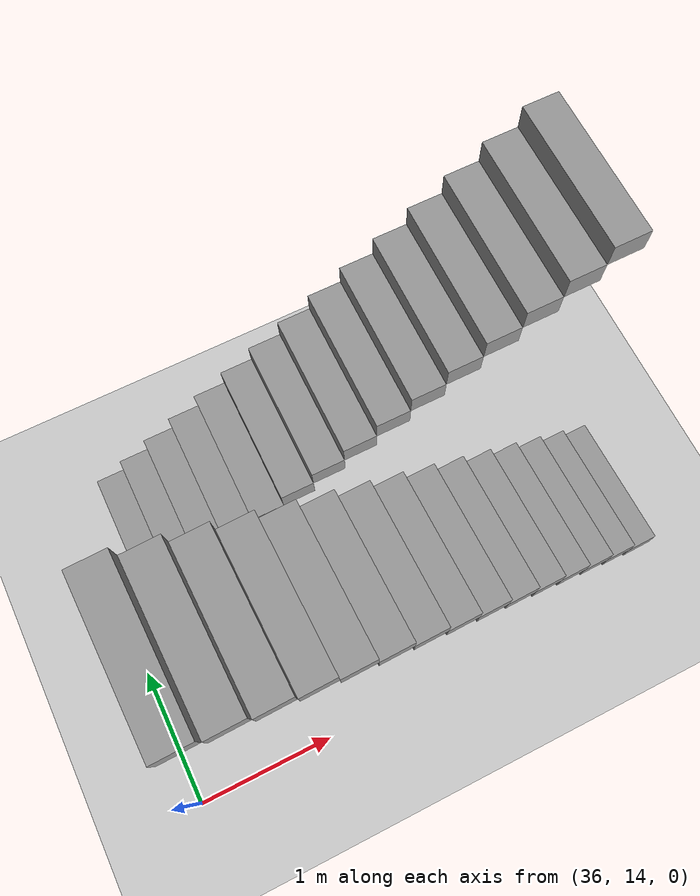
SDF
<sdf version="1.6">
 <world name="default">
  <model name="ground_plane">
   <static>1</static>
   <link name="link">
    <collision name="collision">
     <geometry><plane><normal>0 0 1</normal><size>100 100</size></plane></geometry>
     <surface><friction><ode><mu>100</mu><mu2>50</mu2></ode></friction></surface>
    </collision>
    <visual name="visual">
     <cast_shadows>0</cast_shadows>
     <geometry><plane><normal>0 0 1</normal><size>100 100</size></plane></geometry>
     <material>
      <script><uri>file://media/materials/scripts/gazebo.material</uri><name>Gazebo/Grey</name></script>
     </material>
    </visual>
   </link>
  </model>
  <model name="Staircase_5">
   <link name="Stairs_0">
    <visual name="Stairs_0_Visual_2">
     <pose>-1.16667 -0 0.416667 0 -0 1.5708</pose>
     <geometry><box><size>1 0.233333 0.166667</size></box></geometry>
     <material>
      <script><uri>file://media/materials/scripts/gazebo.material</uri><name>Gazebo/Grey</name></script>
      <ambient>1 1 1 1</ambient>
      <shader type="pixel"/>
     </material>
     <meta><layer>0</layer></meta>
    </visual>
    <visual name="Stairs_0_Visual_3">
     <pose>-0.933333 -0 0.583333 0 -0 1.5708</pose>
     <geometry><box><size>1 0.233333 0.166667</size></box></geometry>
     <material>
      <script><uri>file://media/materials/scripts/gazebo.material</uri><name>Gazebo/Grey</name></script>
      <ambient>1 1 1 1</ambient>
      <shader type="pixel"/>
     </material>
     <meta><layer>0</layer></meta>
    </visual>
    <visual name="Stairs_0_Visual_4">
     <pose>-0.7 0 0.75 0 -0 1.5708</pose>
     <geometry><box><size>1 0.233333 0.166667</size></box></geometry>
     <material>
      <script><uri>file://media/materials/scripts/gazebo.material</uri><name>Gazebo/Grey</name></script>
      <ambient>1 1 1 1</ambient>
      <shader type="pixel"/>
     </material>
     <meta><layer>0</layer></meta>
    </visual>
    <visual name="Stairs_0_Visual_5">
     <pose>-0.466667 0 0.916667 0 -0 1.5708</pose>
     <geometry><box><size>1 0.233333 0.166667</size></box></geometry>
     <material>
      <script><uri>file://media/materials/scripts/gazebo.material</uri><name>Gazebo/Grey</name></script>
      <ambient>1 1 1 1</ambient>
      <shader type="pixel"/>
     </material>
     <meta><layer>0</layer></meta>
    </visual>
    <visual name="Stairs_0_Visual_6">
     <pose>-0.233333 0 1.08333 0 -0 1.5708</pose>
     <geometry><box><size>1 0.233333 0.166667</size></box></geometry>
     <material>
      <script><uri>file://media/materials/scripts/gazebo.material</uri><name>Gazebo/Grey</name></script>
      <ambient>1 1 1 1</ambient>
      <shader type="pixel"/>
     </material>
     <meta><layer>0</layer></meta>
    </visual>
    <visual name="Stairs_0_Visual_7">
     <pose>0 0 1.25 0 -0 1.5708</pose>
     <geometry><box><size>1 0.233333 0.166667</size></box></geometry>
     <material>
      <script><uri>file://media/materials/scripts/gazebo.material</uri><name>Gazebo/Grey</name></script>
      <ambient>1 1 1 1</ambient>
      <shader type="pixel"/>
     </material>
     <meta><layer>0</layer></meta>
    </visual>
    <visual name="Stairs_0_Visual_8">
     <pose>0.233333 0 1.41667 0 -0 1.5708</pose>
     <geometry><box><size>1 0.233333 0.166667</size></box></geometry>
     <material>
      <script><uri>file://media/materials/scripts/gazebo.material</uri><name>Gazebo/Grey</name></script>
      <ambient>1 1 1 1</ambient>
      <shader type="pixel"/>
     </material>
     <meta><layer>0</layer></meta>
    </visual>
    <visual name="Stairs_0_Visual_9">
     <pose>0.466667 0 1.58333 0 -0 1.5708</pose>
     <geometry><box><size>1 0.233333 0.166667</size></box></geometry>
     <material>
      <script><uri>file://media/materials/scripts/gazebo.material</uri><name>Gazebo/Grey</name></script>
      <ambient>1 1 1 1</ambient>
      <shader type="pixel"/>
     </material>
     <meta><layer>0</layer></meta>
    </visual>
    <visual name="Stairs_0_Visual_10">
     <pose>0.7 0 1.75 0 -0 1.5708</pose>
     <geometry><box><size>1 0.233333 0.166667</size></box></geometry>
     <material>
      <script><uri>file://media/materials/scripts/gazebo.material</uri><name>Gazebo/Grey</name></script>
      <ambient>1 1 1 1</ambient>
      <shader type="pixel"/>
     </material>
     <meta><layer>0</layer></meta>
    </visual>
    <visual name="Stairs_0_Visual_11">
     <pose>0.933334 0 1.91667 0 -0 1.5708</pose>
     <geometry><box><size>1 0.233333 0.166667</size></box></geometry>
     <material>
      <script><uri>file://media/materials/scripts/gazebo.material</uri><name>Gazebo/Grey</name></script>
      <ambient>1 1 1 1</ambient>
      <shader type="pixel"/>
     </material>
     <meta><layer>0</layer></meta>
    </visual>
    <visual name="Stairs_0_Visual_12">
     <pose>1.16667 0 2.08333 0 -0 1.5708</pose>
     <geometry><box><size>1 0.233333 0.166667</size></box></geometry>
     <material>
      <script><uri>file://media/materials/scripts/gazebo.material</uri><name>Gazebo/Grey</name></script>
      <ambient>1 1 1 1</ambient>
      <shader type="pixel"/>
     </material>
     <meta><layer>0</layer></meta>
    </visual>
    <visual name="Stairs_0_Visual_13">
     <pose>1.4 0 2.25 0 -0 1.5708</pose>
     <geometry><box><size>1 0.233333 0.166667</size></box></geometry>
     <material>
      <script><uri>file://media/materials/scripts/gazebo.material</uri><name>Gazebo/Grey</name></script>
      <ambient>1 1 1 1</ambient>
      <shader type="pixel"/>
     </material>
     <meta><layer>0</layer></meta>
    </visual>
    <visual name="Stairs_0_Visual_14">
     <pose>1.63333 0 2.41667 0 -0 1.5708</pose>
     <geometry><box><size>1 0.233333 0.166667</size></box></geometry>
     <material>
      <script><uri>file://media/materials/scripts/gazebo.material</uri><name>Gazebo/Grey</name></script>
      <ambient>1 1 1 1</ambient>
      <shader type="pixel"/>
     </material>
     <meta><layer>0</layer></meta>
    </visual>
    <visual name="Stairs_0_Visual_0">
     <pose>-1.63333 -0 0.083333 0 -0 1.5708</pose>
     <geometry><box><size>1 0.233333 0.166667</size></box></geometry>
     <material>
      <script><uri>file://media/materials/scripts/gazebo.material</uri><name>Gazebo/Grey</name></script>
      <ambient>1 1 1 1</ambient>
      <shader type="pixel"/>
     </material>
     <meta><layer>0</layer></meta>
    </visual>
    <visual name="Stairs_0_Visual_1">
     <pose>-1.4 -0 0.25 0 -0 1.5708</pose>
     <geometry><box><size>1 0.233333 0.166667</size></box></geometry>
     <material>
      <script><uri>file://media/materials/scripts/gazebo.material</uri><name>Gazebo/Grey</name></script>
      <ambient>1 1 1 1</ambient>
      <shader type="pixel"/>
     </material>
     <meta><layer>0</layer></meta>
    </visual>
    <collision name="Stairs_0_Collision_0">
     <pose>-1.63333 0 0.083333 0 -0 1.5708</pose>
     <geometry><box><size>1 0.233333 0.166667</size></box></geometry>
     <surface>
      <friction>
       <ode><mu>1</mu><mu2>1</mu2><fdir1>0 0 0</fdir1><slip1>0</slip1><slip2>0</slip2></ode>
       <torsional>
        <coefficient>1</coefficient>
        <patch_radius>0</patch_radius>
        <surface_radius>0</surface_radius>
        <use_patch_radius>1</use_patch_radius>
        <ode><slip>0</slip></ode>
       </torsional>
      </friction>
      <bounce><restitution_coefficient>0</restitution_coefficient><threshold>1e+06</threshold></bounce>
      <contact>
       <collide_without_contact>0</collide_without_contact>
       <collide_without_contact_bitmask>1</collide_without_contact_bitmask>
       <collide_bitmask>1</collide_bitmask>
       <ode>
        <soft_cfm>0</soft_cfm>
        <soft_erp>0.2</soft_erp>
        <kp>1e+13</kp>
        <kd>1</kd>
        <max_vel>0.01</max_vel>
        <min_depth>0</min_depth>
       </ode>
       <bullet>
        <split_impulse>1</split_impulse>
        <split_impulse_penetration_threshold>-0.01</split_impulse_penetration_threshold>
        <soft_cfm>0</soft_cfm>
        <soft_erp>0.2</soft_erp>
        <kp>1e+13</kp>
        <kd>1</kd>
       </bullet>
      </contact>
     </surface>
    </collision>
    <collision name="Stairs_0_Collision_1">
     <pose>-1.4 0 0.25 0 -0 1.5708</pose>
     <geometry><box><size>1 0.233333 0.166667</size></box></geometry>
     <surface>
      <friction>
       <ode><mu>1</mu><mu2>1</mu2><fdir1>0 0 0</fdir1><slip1>0</slip1><slip2>0</slip2></ode>
       <torsional>
        <coefficient>1</coefficient>
        <patch_radius>0</patch_radius>
        <surface_radius>0</surface_radius>
        <use_patch_radius>1</use_patch_radius>
        <ode><slip>0</slip></ode>
       </torsional>
      </friction>
      <bounce><restitution_coefficient>0</restitution_coefficient><threshold>1e+06</threshold></bounce>
      <contact>
       <collide_without_contact>0</collide_without_contact>
       <collide_without_contact_bitmask>1</collide_without_contact_bitmask>
       <collide_bitmask>1</collide_bitmask>
       <ode>
        <soft_cfm>0</soft_cfm>
        <soft_erp>0.2</soft_erp>
        <kp>1e+13</kp>
        <kd>1</kd>
        <max_vel>0.01</max_vel>
        <min_depth>0</min_depth>
       </ode>
       <bullet>
        <split_impulse>1</split_impulse>
        <split_impulse_penetration_threshold>-0.01</split_impulse_penetration_threshold>
        <soft_cfm>0</soft_cfm>
        <soft_erp>0.2</soft_erp>
        <kp>1e+13</kp>
        <kd>1</kd>
       </bullet>
      </contact>
     </surface>
    </collision>
    <collision name="Stairs_0_Collision_2">
     <pose>-1.16667 0 0.416667 0 -0 1.5708</pose>
     <geometry><box><size>1 0.233333 0.166667</size></box></geometry>
     <surface>
      <friction>
       <ode><mu>1</mu><mu2>1</mu2><fdir1>0 0 0</fdir1><slip1>0</slip1><slip2>0</slip2></ode>
       <torsional>
        <coefficient>1</coefficient>
        <patch_radius>0</patch_radius>
        <surface_radius>0</surface_radius>
        <use_patch_radius>1</use_patch_radius>
        <ode><slip>0</slip></ode>
       </torsional>
      </friction>
      <bounce><restitution_coefficient>0</restitution_coefficient><threshold>1e+06</threshold></bounce>
      <contact>
       <collide_without_contact>0</collide_without_contact>
       <collide_without_contact_bitmask>1</collide_without_contact_bitmask>
       <collide_bitmask>1</collide_bitmask>
       <ode>
        <soft_cfm>0</soft_cfm>
        <soft_erp>0.2</soft_erp>
        <kp>1e+13</kp>
        <kd>1</kd>
        <max_vel>0.01</max_vel>
        <min_depth>0</min_depth>
       </ode>
       <bullet>
        <split_impulse>1</split_impulse>
        <split_impulse_penetration_threshold>-0.01</split_impulse_penetration_threshold>
        <soft_cfm>0</soft_cfm>
        <soft_erp>0.2</soft_erp>
        <kp>1e+13</kp>
        <kd>1</kd>
       </bullet>
      </contact>
     </surface>
    </collision>
    <collision name="Stairs_0_Collision_3">
     <pose>-0.933333 0 0.583333 0 -0 1.5708</pose>
     <geometry><box><size>1 0.233333 0.166667</size></box></geometry>
     <surface>
      <friction>
       <ode><mu>1</mu><mu2>1</mu2><fdir1>0 0 0</fdir1><slip1>0</slip1><slip2>0</slip2></ode>
       <torsional>
        <coefficient>1</coefficient>
        <patch_radius>0</patch_radius>
        <surface_radius>0</surface_radius>
        <use_patch_radius>1</use_patch_radius>
        <ode><slip>0</slip></ode>
       </torsional>
      </friction>
      <bounce><restitution_coefficient>0</restitution_coefficient><threshold>1e+06</threshold></bounce>
      <contact>
       <collide_without_contact>0</collide_without_contact>
       <collide_without_contact_bitmask>1</collide_without_contact_bitmask>
       <collide_bitmask>1</collide_bitmask>
       <ode>
        <soft_cfm>0</soft_cfm>
        <soft_erp>0.2</soft_erp>
        <kp>1e+13</kp>
        <kd>1</kd>
        <max_vel>0.01</max_vel>
        <min_depth>0</min_depth>
       </ode>
       <bullet>
        <split_impulse>1</split_impulse>
        <split_impulse_penetration_threshold>-0.01</split_impulse_penetration_threshold>
        <soft_cfm>0</soft_cfm>
        <soft_erp>0.2</soft_erp>
        <kp>1e+13</kp>
        <kd>1</kd>
       </bullet>
      </contact>
     </surface>
    </collision>
    <collision name="Stairs_0_Collision_4">
     <pose>-0.7 0 0.75 0 -0 1.5708</pose>
     <geometry><box><size>1 0.233333 0.166667</size></box></geometry>
     <surface>
      <friction>
       <ode><mu>1</mu><mu2>1</mu2><fdir1>0 0 0</fdir1><slip1>0</slip1><slip2>0</slip2></ode>
       <torsional>
        <coefficient>1</coefficient>
        <patch_radius>0</patch_radius>
        <surface_radius>0</surface_radius>
        <use_patch_radius>1</use_patch_radius>
        <ode><slip>0</slip></ode>
       </torsional>
      </friction>
      <bounce><restitution_coefficient>0</restitution_coefficient><threshold>1e+06</threshold></bounce>
      <contact>
       <collide_without_contact>0</collide_without_contact>
       <collide_without_contact_bitmask>1</collide_without_contact_bitmask>
       <collide_bitmask>1</collide_bitmask>
       <ode>
        <soft_cfm>0</soft_cfm>
        <soft_erp>0.2</soft_erp>
        <kp>1e+13</kp>
        <kd>1</kd>
        <max_vel>0.01</max_vel>
        <min_depth>0</min_depth>
       </ode>
       <bullet>
        <split_impulse>1</split_impulse>
        <split_impulse_penetration_threshold>-0.01</split_impulse_penetration_threshold>
        <soft_cfm>0</soft_cfm>
        <soft_erp>0.2</soft_erp>
        <kp>1e+13</kp>
        <kd>1</kd>
       </bullet>
      </contact>
     </surface>
    </collision>
    <collision name="Stairs_0_Collision_5">
     <pose>-0.466667 0 0.916667 0 -0 1.5708</pose>
     <geometry><box><size>1 0.233333 0.166667</size></box></geometry>
     <surface>
      <friction>
       <ode><mu>1</mu><mu2>1</mu2><fdir1>0 0 0</fdir1><slip1>0</slip1><slip2>0</slip2></ode>
       <torsional>
        <coefficient>1</coefficient>
        <patch_radius>0</patch_radius>
        <surface_radius>0</surface_radius>
        <use_patch_radius>1</use_patch_radius>
        <ode><slip>0</slip></ode>
       </torsional>
      </friction>
      <bounce><restitution_coefficient>0</restitution_coefficient><threshold>1e+06</threshold></bounce>
      <contact>
       <collide_without_contact>0</collide_without_contact>
       <collide_without_contact_bitmask>1</collide_without_contact_bitmask>
       <collide_bitmask>1</collide_bitmask>
       <ode>
        <soft_cfm>0</soft_cfm>
        <soft_erp>0.2</soft_erp>
        <kp>1e+13</kp>
        <kd>1</kd>
        <max_vel>0.01</max_vel>
        <min_depth>0</min_depth>
       </ode>
       <bullet>
        <split_impulse>1</split_impulse>
        <split_impulse_penetration_threshold>-0.01</split_impulse_penetration_threshold>
        <soft_cfm>0</soft_cfm>
        <soft_erp>0.2</soft_erp>
        <kp>1e+13</kp>
        <kd>1</kd>
       </bullet>
      </contact>
     </surface>
    </collision>
    <collision name="Stairs_0_Collision_6">
     <pose>-0.233333 0 1.08333 0 -0 1.5708</pose>
     <geometry><box><size>1 0.233333 0.166667</size></box></geometry>
     <surface>
      <friction>
       <ode><mu>1</mu><mu2>1</mu2><fdir1>0 0 0</fdir1><slip1>0</slip1><slip2>0</slip2></ode>
       <torsional>
        <coefficient>1</coefficient>
        <patch_radius>0</patch_radius>
        <surface_radius>0</surface_radius>
        <use_patch_radius>1</use_patch_radius>
        <ode><slip>0</slip></ode>
       </torsional>
      </friction>
      <bounce><restitution_coefficient>0</restitution_coefficient><threshold>1e+06</threshold></bounce>
      <contact>
       <collide_without_contact>0</collide_without_contact>
       <collide_without_contact_bitmask>1</collide_without_contact_bitmask>
       <collide_bitmask>1</collide_bitmask>
       <ode>
        <soft_cfm>0</soft_cfm>
        <soft_erp>0.2</soft_erp>
        <kp>1e+13</kp>
        <kd>1</kd>
        <max_vel>0.01</max_vel>
        <min_depth>0</min_depth>
       </ode>
       <bullet>
        <split_impulse>1</split_impulse>
        <split_impulse_penetration_threshold>-0.01</split_impulse_penetration_threshold>
        <soft_cfm>0</soft_cfm>
        <soft_erp>0.2</soft_erp>
        <kp>1e+13</kp>
        <kd>1</kd>
       </bullet>
      </contact>
     </surface>
    </collision>
    <collision name="Stairs_0_Collision_7">
     <pose>0 0 1.25 0 -0 1.5708</pose>
     <geometry><box><size>1 0.233333 0.166667</size></box></geometry>
     <surface>
      <friction>
       <ode><mu>1</mu><mu2>1</mu2><fdir1>0 0 0</fdir1><slip1>0</slip1><slip2>0</slip2></ode>
       <torsional>
        <coefficient>1</coefficient>
        <patch_radius>0</patch_radius>
        <surface_radius>0</surface_radius>
        <use_patch_radius>1</use_patch_radius>
        <ode><slip>0</slip></ode>
       </torsional>
      </friction>
      <bounce><restitution_coefficient>0</restitution_coefficient><threshold>1e+06</threshold></bounce>
      <contact>
       <collide_without_contact>0</collide_without_contact>
       <collide_without_contact_bitmask>1</collide_without_contact_bitmask>
       <collide_bitmask>1</collide_bitmask>
       <ode>
        <soft_cfm>0</soft_cfm>
        <soft_erp>0.2</soft_erp>
        <kp>1e+13</kp>
        <kd>1</kd>
        <max_vel>0.01</max_vel>
        <min_depth>0</min_depth>
       </ode>
       <bullet>
        <split_impulse>1</split_impulse>
        <split_impulse_penetration_threshold>-0.01</split_impulse_penetration_threshold>
        <soft_cfm>0</soft_cfm>
        <soft_erp>0.2</soft_erp>
        <kp>1e+13</kp>
        <kd>1</kd>
       </bullet>
      </contact>
     </surface>
    </collision>
    <collision name="Stairs_0_Collision_8">
     <pose>0.233333 0 1.41667 0 -0 1.5708</pose>
     <geometry><box><size>1 0.233333 0.166667</size></box></geometry>
     <surface>
      <friction>
       <ode><mu>1</mu><mu2>1</mu2><fdir1>0 0 0</fdir1><slip1>0</slip1><slip2>0</slip2></ode>
       <torsional>
        <coefficient>1</coefficient>
        <patch_radius>0</patch_radius>
        <surface_radius>0</surface_radius>
        <use_patch_radius>1</use_patch_radius>
        <ode><slip>0</slip></ode>
       </torsional>
      </friction>
      <bounce><restitution_coefficient>0</restitution_coefficient><threshold>1e+06</threshold></bounce>
      <contact>
       <collide_without_contact>0</collide_without_contact>
       <collide_without_contact_bitmask>1</collide_without_contact_bitmask>
       <collide_bitmask>1</collide_bitmask>
       <ode>
        <soft_cfm>0</soft_cfm>
        <soft_erp>0.2</soft_erp>
        <kp>1e+13</kp>
        <kd>1</kd>
        <max_vel>0.01</max_vel>
        <min_depth>0</min_depth>
       </ode>
       <bullet>
        <split_impulse>1</split_impulse>
        <split_impulse_penetration_threshold>-0.01</split_impulse_penetration_threshold>
        <soft_cfm>0</soft_cfm>
        <soft_erp>0.2</soft_erp>
        <kp>1e+13</kp>
        <kd>1</kd>
       </bullet>
      </contact>
     </surface>
    </collision>
    <collision name="Stairs_0_Collision_9">
     <pose>0.466667 0 1.58333 0 -0 1.5708</pose>
     <geometry><box><size>1 0.233333 0.166667</size></box></geometry>
     <surface>
      <friction>
       <ode><mu>1</mu><mu2>1</mu2><fdir1>0 0 0</fdir1><slip1>0</slip1><slip2>0</slip2></ode>
       <torsional>
        <coefficient>1</coefficient>
        <patch_radius>0</patch_radius>
        <surface_radius>0</surface_radius>
        <use_patch_radius>1</use_patch_radius>
        <ode><slip>0</slip></ode>
       </torsional>
      </friction>
      <bounce><restitution_coefficient>0</restitution_coefficient><threshold>1e+06</threshold></bounce>
      <contact>
       <collide_without_contact>0</collide_without_contact>
       <collide_without_contact_bitmask>1</collide_without_contact_bitmask>
       <collide_bitmask>1</collide_bitmask>
       <ode>
        <soft_cfm>0</soft_cfm>
        <soft_erp>0.2</soft_erp>
        <kp>1e+13</kp>
        <kd>1</kd>
        <max_vel>0.01</max_vel>
        <min_depth>0</min_depth>
       </ode>
       <bullet>
        <split_impulse>1</split_impulse>
        <split_impulse_penetration_threshold>-0.01</split_impulse_penetration_threshold>
        <soft_cfm>0</soft_cfm>
        <soft_erp>0.2</soft_erp>
        <kp>1e+13</kp>
        <kd>1</kd>
       </bullet>
      </contact>
     </surface>
    </collision>
    <collision name="Stairs_0_Collision_10">
     <pose>0.7 0 1.75 0 -0 1.5708</pose>
     <geometry><box><size>1 0.233333 0.166667</size></box></geometry>
     <surface>
      <friction>
       <ode><mu>1</mu><mu2>1</mu2><fdir1>0 0 0</fdir1><slip1>0</slip1><slip2>0</slip2></ode>
       <torsional>
        <coefficient>1</coefficient>
        <patch_radius>0</patch_radius>
        <surface_radius>0</surface_radius>
        <use_patch_radius>1</use_patch_radius>
        <ode><slip>0</slip></ode>
       </torsional>
      </friction>
      <bounce><restitution_coefficient>0</restitution_coefficient><threshold>1e+06</threshold></bounce>
      <contact>
       <collide_without_contact>0</collide_without_contact>
       <collide_without_contact_bitmask>1</collide_without_contact_bitmask>
       <collide_bitmask>1</collide_bitmask>
       <ode>
        <soft_cfm>0</soft_cfm>
        <soft_erp>0.2</soft_erp>
        <kp>1e+13</kp>
        <kd>1</kd>
        <max_vel>0.01</max_vel>
        <min_depth>0</min_depth>
       </ode>
       <bullet>
        <split_impulse>1</split_impulse>
        <split_impulse_penetration_threshold>-0.01</split_impulse_penetration_threshold>
        <soft_cfm>0</soft_cfm>
        <soft_erp>0.2</soft_erp>
        <kp>1e+13</kp>
        <kd>1</kd>
       </bullet>
      </contact>
     </surface>
    </collision>
    <collision name="Stairs_0_Collision_11">
     <pose>0.933334 0 1.91667 0 -0 1.5708</pose>
     <geometry><box><size>1 0.233333 0.166667</size></box></geometry>
     <surface>
      <friction>
       <ode><mu>1</mu><mu2>1</mu2><fdir1>0 0 0</fdir1><slip1>0</slip1><slip2>0</slip2></ode>
       <torsional>
        <coefficient>1</coefficient>
        <patch_radius>0</patch_radius>
        <surface_radius>0</surface_radius>
        <use_patch_radius>1</use_patch_radius>
        <ode><slip>0</slip></ode>
       </torsional>
      </friction>
      <bounce><restitution_coefficient>0</restitution_coefficient><threshold>1e+06</threshold></bounce>
      <contact>
       <collide_without_contact>0</collide_without_contact>
       <collide_without_contact_bitmask>1</collide_without_contact_bitmask>
       <collide_bitmask>1</collide_bitmask>
       <ode>
        <soft_cfm>0</soft_cfm>
        <soft_erp>0.2</soft_erp>
        <kp>1e+13</kp>
        <kd>1</kd>
        <max_vel>0.01</max_vel>
        <min_depth>0</min_depth>
       </ode>
       <bullet>
        <split_impulse>1</split_impulse>
        <split_impulse_penetration_threshold>-0.01</split_impulse_penetration_threshold>
        <soft_cfm>0</soft_cfm>
        <soft_erp>0.2</soft_erp>
        <kp>1e+13</kp>
        <kd>1</kd>
       </bullet>
      </contact>
     </surface>
    </collision>
    <collision name="Stairs_0_Collision_12">
     <pose>1.16667 0 2.08333 0 -0 1.5708</pose>
     <geometry><box><size>1 0.233333 0.166667</size></box></geometry>
     <surface>
      <friction>
       <ode><mu>1</mu><mu2>1</mu2><fdir1>0 0 0</fdir1><slip1>0</slip1><slip2>0</slip2></ode>
       <torsional>
        <coefficient>1</coefficient>
        <patch_radius>0</patch_radius>
        <surface_radius>0</surface_radius>
        <use_patch_radius>1</use_patch_radius>
        <ode><slip>0</slip></ode>
       </torsional>
      </friction>
      <bounce><restitution_coefficient>0</restitution_coefficient><threshold>1e+06</threshold></bounce>
      <contact>
       <collide_without_contact>0</collide_without_contact>
       <collide_without_contact_bitmask>1</collide_without_contact_bitmask>
       <collide_bitmask>1</collide_bitmask>
       <ode>
        <soft_cfm>0</soft_cfm>
        <soft_erp>0.2</soft_erp>
        <kp>1e+13</kp>
        <kd>1</kd>
        <max_vel>0.01</max_vel>
        <min_depth>0</min_depth>
       </ode>
       <bullet>
        <split_impulse>1</split_impulse>
        <split_impulse_penetration_threshold>-0.01</split_impulse_penetration_threshold>
        <soft_cfm>0</soft_cfm>
        <soft_erp>0.2</soft_erp>
        <kp>1e+13</kp>
        <kd>1</kd>
       </bullet>
      </contact>
     </surface>
    </collision>
    <collision name="Stairs_0_Collision_13">
     <pose>1.4 0 2.25 0 -0 1.5708</pose>
     <geometry><box><size>1 0.233333 0.166667</size></box></geometry>
     <surface>
      <friction>
       <ode><mu>1</mu><mu2>1</mu2><fdir1>0 0 0</fdir1><slip1>0</slip1><slip2>0</slip2></ode>
       <torsional>
        <coefficient>1</coefficient>
        <patch_radius>0</patch_radius>
        <surface_radius>0</surface_radius>
        <use_patch_radius>1</use_patch_radius>
        <ode><slip>0</slip></ode>
       </torsional>
      </friction>
      <bounce><restitution_coefficient>0</restitution_coefficient><threshold>1e+06</threshold></bounce>
      <contact>
       <collide_without_contact>0</collide_without_contact>
       <collide_without_contact_bitmask>1</collide_without_contact_bitmask>
       <collide_bitmask>1</collide_bitmask>
       <ode>
        <soft_cfm>0</soft_cfm>
        <soft_erp>0.2</soft_erp>
        <kp>1e+13</kp>
        <kd>1</kd>
        <max_vel>0.01</max_vel>
        <min_depth>0</min_depth>
       </ode>
       <bullet>
        <split_impulse>1</split_impulse>
        <split_impulse_penetration_threshold>-0.01</split_impulse_penetration_threshold>
        <soft_cfm>0</soft_cfm>
        <soft_erp>0.2</soft_erp>
        <kp>1e+13</kp>
        <kd>1</kd>
       </bullet>
      </contact>
     </surface>
    </collision>
    <collision name="Stairs_0_Collision_14">
     <pose>1.63333 0 2.41667 0 -0 1.5708</pose>
     <geometry><box><size>1 0.233333 0.166667</size></box></geometry>
     <surface>
      <friction>
       <ode><mu>1</mu><mu2>1</mu2><fdir1>0 0 0</fdir1><slip1>0</slip1><slip2>0</slip2></ode>
       <torsional>
        <coefficient>1</coefficient>
        <patch_radius>0</patch_radius>
        <surface_radius>0</surface_radius>
        <use_patch_radius>1</use_patch_radius>
        <ode><slip>0</slip></ode>
       </torsional>
      </friction>
      <bounce><restitution_coefficient>0</restitution_coefficient><threshold>1e+06</threshold></bounce>
      <contact>
       <collide_without_contact>0</collide_without_contact>
       <collide_without_contact_bitmask>1</collide_without_contact_bitmask>
       <collide_bitmask>1</collide_bitmask>
       <ode>
        <soft_cfm>0</soft_cfm>
        <soft_erp>0.2</soft_erp>
        <kp>1e+13</kp>
        <kd>1</kd>
        <max_vel>0.01</max_vel>
        <min_depth>0</min_depth>
       </ode>
       <bullet>
        <split_impulse>1</split_impulse>
        <split_impulse_penetration_threshold>-0.01</split_impulse_penetration_threshold>
        <soft_cfm>0</soft_cfm>
        <soft_erp>0.2</soft_erp>
        <kp>1e+13</kp>
        <kd>1</kd>
       </bullet>
      </contact>
     </surface>
    </collision>
   </link>
   <static>1</static>
   <pose>37.9742 15.9641 0 0 -0 0</pose>
  </model>
  <model name="Staircase_6">
   <link name="Stairs_0">
    <visual name="Stairs_0_Visual_2">
     <pose>-1.16667 -0 0.416667 0 -0 1.5708</pose>
     <geometry><box><size>1 0.233333 0.166667</size></box></geometry>
     <material>
      <script><uri>file://media/materials/scripts/gazebo.material</uri><name>Gazebo/Grey</name></script>
      <ambient>1 1 1 1</ambient>
      <shader type="pixel"/>
     </material>
     <meta><layer>0</layer></meta>
    </visual>
    <visual name="Stairs_0_Visual_3">
     <pose>-0.933333 -0 0.583333 0 -0 1.5708</pose>
     <geometry><box><size>1 0.233333 0.166667</size></box></geometry>
     <material>
      <script><uri>file://media/materials/scripts/gazebo.material</uri><name>Gazebo/Grey</name></script>
      <ambient>1 1 1 1</ambient>
      <shader type="pixel"/>
     </material>
     <meta><layer>0</layer></meta>
    </visual>
    <visual name="Stairs_0_Visual_4">
     <pose>-0.7 0 0.75 0 -0 1.5708</pose>
     <geometry><box><size>1 0.233333 0.166667</size></box></geometry>
     <material>
      <script><uri>file://media/materials/scripts/gazebo.material</uri><name>Gazebo/Grey</name></script>
      <ambient>1 1 1 1</ambient>
      <shader type="pixel"/>
     </material>
     <meta><layer>0</layer></meta>
    </visual>
    <visual name="Stairs_0_Visual_5">
     <pose>-0.466667 0 0.916667 0 -0 1.5708</pose>
     <geometry><box><size>1 0.233333 0.166667</size></box></geometry>
     <material>
      <script><uri>file://media/materials/scripts/gazebo.material</uri><name>Gazebo/Grey</name></script>
      <ambient>1 1 1 1</ambient>
      <shader type="pixel"/>
     </material>
     <meta><layer>0</layer></meta>
    </visual>
    <visual name="Stairs_0_Visual_6">
     <pose>-0.233333 0 1.08333 0 -0 1.5708</pose>
     <geometry><box><size>1 0.233333 0.166667</size></box></geometry>
     <material>
      <script><uri>file://media/materials/scripts/gazebo.material</uri><name>Gazebo/Grey</name></script>
      <ambient>1 1 1 1</ambient>
      <shader type="pixel"/>
     </material>
     <meta><layer>0</layer></meta>
    </visual>
    <visual name="Stairs_0_Visual_7">
     <pose>0 0 1.25 0 -0 1.5708</pose>
     <geometry><box><size>1 0.233333 0.166667</size></box></geometry>
     <material>
      <script><uri>file://media/materials/scripts/gazebo.material</uri><name>Gazebo/Grey</name></script>
      <ambient>1 1 1 1</ambient>
      <shader type="pixel"/>
     </material>
     <meta><layer>0</layer></meta>
    </visual>
    <visual name="Stairs_0_Visual_8">
     <pose>0.233333 0 1.41667 0 -0 1.5708</pose>
     <geometry><box><size>1 0.233333 0.166667</size></box></geometry>
     <material>
      <script><uri>file://media/materials/scripts/gazebo.material</uri><name>Gazebo/Grey</name></script>
      <ambient>1 1 1 1</ambient>
      <shader type="pixel"/>
     </material>
     <meta><layer>0</layer></meta>
    </visual>
    <visual name="Stairs_0_Visual_9">
     <pose>0.466667 0 1.58333 0 -0 1.5708</pose>
     <geometry><box><size>1 0.233333 0.166667</size></box></geometry>
     <material>
      <script><uri>file://media/materials/scripts/gazebo.material</uri><name>Gazebo/Grey</name></script>
      <ambient>1 1 1 1</ambient>
      <shader type="pixel"/>
     </material>
     <meta><layer>0</layer></meta>
    </visual>
    <visual name="Stairs_0_Visual_10">
     <pose>0.7 0 1.75 0 -0 1.5708</pose>
     <geometry><box><size>1 0.233333 0.166667</size></box></geometry>
     <material>
      <script><uri>file://media/materials/scripts/gazebo.material</uri><name>Gazebo/Grey</name></script>
      <ambient>1 1 1 1</ambient>
      <shader type="pixel"/>
     </material>
     <meta><layer>0</layer></meta>
    </visual>
    <visual name="Stairs_0_Visual_11">
     <pose>0.933334 0 1.91667 0 -0 1.5708</pose>
     <geometry><box><size>1 0.233333 0.166667</size></box></geometry>
     <material>
      <script><uri>file://media/materials/scripts/gazebo.material</uri><name>Gazebo/Grey</name></script>
      <ambient>1 1 1 1</ambient>
      <shader type="pixel"/>
     </material>
     <meta><layer>0</layer></meta>
    </visual>
    <visual name="Stairs_0_Visual_12">
     <pose>1.16667 0 2.08333 0 -0 1.5708</pose>
     <geometry><box><size>1 0.233333 0.166667</size></box></geometry>
     <material>
      <script><uri>file://media/materials/scripts/gazebo.material</uri><name>Gazebo/Grey</name></script>
      <ambient>1 1 1 1</ambient>
      <shader type="pixel"/>
     </material>
     <meta><layer>0</layer></meta>
    </visual>
    <visual name="Stairs_0_Visual_13">
     <pose>1.4 0 2.25 0 -0 1.5708</pose>
     <geometry><box><size>1 0.233333 0.166667</size></box></geometry>
     <material>
      <script><uri>file://media/materials/scripts/gazebo.material</uri><name>Gazebo/Grey</name></script>
      <ambient>1 1 1 1</ambient>
      <shader type="pixel"/>
     </material>
     <meta><layer>0</layer></meta>
    </visual>
    <visual name="Stairs_0_Visual_14">
     <pose>1.63333 0 2.41667 0 -0 1.5708</pose>
     <geometry><box><size>1 0.233333 0.166667</size></box></geometry>
     <material>
      <script><uri>file://media/materials/scripts/gazebo.material</uri><name>Gazebo/Grey</name></script>
      <ambient>1 1 1 1</ambient>
      <shader type="pixel"/>
     </material>
     <meta><layer>0</layer></meta>
    </visual>
    <visual name="Stairs_0_Visual_0">
     <pose>-1.63333 -0 0.083333 0 -0 1.5708</pose>
     <geometry><box><size>1 0.233333 0.166667</size></box></geometry>
     <material>
      <script><uri>file://media/materials/scripts/gazebo.material</uri><name>Gazebo/Grey</name></script>
      <ambient>1 1 1 1</ambient>
      <shader type="pixel"/>
     </material>
     <meta><layer>0</layer></meta>
    </visual>
    <visual name="Stairs_0_Visual_1">
     <pose>-1.4 -0 0.25 0 -0 1.5708</pose>
     <geometry><box><size>1 0.233333 0.166667</size></box></geometry>
     <material>
      <script><uri>file://media/materials/scripts/gazebo.material</uri><name>Gazebo/Grey</name></script>
      <ambient>1 1 1 1</ambient>
      <shader type="pixel"/>
     </material>
     <meta><layer>0</layer></meta>
    </visual>
    <collision name="Stairs_0_Collision_0">
     <pose>-1.63333 0 0.083333 0 -0 1.5708</pose>
     <geometry><box><size>1 0.233333 0.166667</size></box></geometry>
     <surface>
      <friction>
       <ode><mu>1</mu><mu2>1</mu2><fdir1>0 0 0</fdir1><slip1>0</slip1><slip2>0</slip2></ode>
       <torsional>
        <coefficient>1</coefficient>
        <patch_radius>0</patch_radius>
        <surface_radius>0</surface_radius>
        <use_patch_radius>1</use_patch_radius>
        <ode><slip>0</slip></ode>
       </torsional>
      </friction>
      <bounce><restitution_coefficient>0</restitution_coefficient><threshold>1e+06</threshold></bounce>
      <contact>
       <collide_without_contact>0</collide_without_contact>
       <collide_without_contact_bitmask>1</collide_without_contact_bitmask>
       <collide_bitmask>1</collide_bitmask>
       <ode>
        <soft_cfm>0</soft_cfm>
        <soft_erp>0.2</soft_erp>
        <kp>1e+13</kp>
        <kd>1</kd>
        <max_vel>0.01</max_vel>
        <min_depth>0</min_depth>
       </ode>
       <bullet>
        <split_impulse>1</split_impulse>
        <split_impulse_penetration_threshold>-0.01</split_impulse_penetration_threshold>
        <soft_cfm>0</soft_cfm>
        <soft_erp>0.2</soft_erp>
        <kp>1e+13</kp>
        <kd>1</kd>
       </bullet>
      </contact>
     </surface>
    </collision>
    <collision name="Stairs_0_Collision_1">
     <pose>-1.4 0 0.25 0 -0 1.5708</pose>
     <geometry><box><size>1 0.233333 0.166667</size></box></geometry>
     <surface>
      <friction>
       <ode><mu>1</mu><mu2>1</mu2><fdir1>0 0 0</fdir1><slip1>0</slip1><slip2>0</slip2></ode>
       <torsional>
        <coefficient>1</coefficient>
        <patch_radius>0</patch_radius>
        <surface_radius>0</surface_radius>
        <use_patch_radius>1</use_patch_radius>
        <ode><slip>0</slip></ode>
       </torsional>
      </friction>
      <bounce><restitution_coefficient>0</restitution_coefficient><threshold>1e+06</threshold></bounce>
      <contact>
       <collide_without_contact>0</collide_without_contact>
       <collide_without_contact_bitmask>1</collide_without_contact_bitmask>
       <collide_bitmask>1</collide_bitmask>
       <ode>
        <soft_cfm>0</soft_cfm>
        <soft_erp>0.2</soft_erp>
        <kp>1e+13</kp>
        <kd>1</kd>
        <max_vel>0.01</max_vel>
        <min_depth>0</min_depth>
       </ode>
       <bullet>
        <split_impulse>1</split_impulse>
        <split_impulse_penetration_threshold>-0.01</split_impulse_penetration_threshold>
        <soft_cfm>0</soft_cfm>
        <soft_erp>0.2</soft_erp>
        <kp>1e+13</kp>
        <kd>1</kd>
       </bullet>
      </contact>
     </surface>
    </collision>
    <collision name="Stairs_0_Collision_2">
     <pose>-1.16667 0 0.416667 0 -0 1.5708</pose>
     <geometry><box><size>1 0.233333 0.166667</size></box></geometry>
     <surface>
      <friction>
       <ode><mu>1</mu><mu2>1</mu2><fdir1>0 0 0</fdir1><slip1>0</slip1><slip2>0</slip2></ode>
       <torsional>
        <coefficient>1</coefficient>
        <patch_radius>0</patch_radius>
        <surface_radius>0</surface_radius>
        <use_patch_radius>1</use_patch_radius>
        <ode><slip>0</slip></ode>
       </torsional>
      </friction>
      <bounce><restitution_coefficient>0</restitution_coefficient><threshold>1e+06</threshold></bounce>
      <contact>
       <collide_without_contact>0</collide_without_contact>
       <collide_without_contact_bitmask>1</collide_without_contact_bitmask>
       <collide_bitmask>1</collide_bitmask>
       <ode>
        <soft_cfm>0</soft_cfm>
        <soft_erp>0.2</soft_erp>
        <kp>1e+13</kp>
        <kd>1</kd>
        <max_vel>0.01</max_vel>
        <min_depth>0</min_depth>
       </ode>
       <bullet>
        <split_impulse>1</split_impulse>
        <split_impulse_penetration_threshold>-0.01</split_impulse_penetration_threshold>
        <soft_cfm>0</soft_cfm>
        <soft_erp>0.2</soft_erp>
        <kp>1e+13</kp>
        <kd>1</kd>
       </bullet>
      </contact>
     </surface>
    </collision>
    <collision name="Stairs_0_Collision_3">
     <pose>-0.933333 0 0.583333 0 -0 1.5708</pose>
     <geometry><box><size>1 0.233333 0.166667</size></box></geometry>
     <surface>
      <friction>
       <ode><mu>1</mu><mu2>1</mu2><fdir1>0 0 0</fdir1><slip1>0</slip1><slip2>0</slip2></ode>
       <torsional>
        <coefficient>1</coefficient>
        <patch_radius>0</patch_radius>
        <surface_radius>0</surface_radius>
        <use_patch_radius>1</use_patch_radius>
        <ode><slip>0</slip></ode>
       </torsional>
      </friction>
      <bounce><restitution_coefficient>0</restitution_coefficient><threshold>1e+06</threshold></bounce>
      <contact>
       <collide_without_contact>0</collide_without_contact>
       <collide_without_contact_bitmask>1</collide_without_contact_bitmask>
       <collide_bitmask>1</collide_bitmask>
       <ode>
        <soft_cfm>0</soft_cfm>
        <soft_erp>0.2</soft_erp>
        <kp>1e+13</kp>
        <kd>1</kd>
        <max_vel>0.01</max_vel>
        <min_depth>0</min_depth>
       </ode>
       <bullet>
        <split_impulse>1</split_impulse>
        <split_impulse_penetration_threshold>-0.01</split_impulse_penetration_threshold>
        <soft_cfm>0</soft_cfm>
        <soft_erp>0.2</soft_erp>
        <kp>1e+13</kp>
        <kd>1</kd>
       </bullet>
      </contact>
     </surface>
    </collision>
    <collision name="Stairs_0_Collision_4">
     <pose>-0.7 0 0.75 0 -0 1.5708</pose>
     <geometry><box><size>1 0.233333 0.166667</size></box></geometry>
     <surface>
      <friction>
       <ode><mu>1</mu><mu2>1</mu2><fdir1>0 0 0</fdir1><slip1>0</slip1><slip2>0</slip2></ode>
       <torsional>
        <coefficient>1</coefficient>
        <patch_radius>0</patch_radius>
        <surface_radius>0</surface_radius>
        <use_patch_radius>1</use_patch_radius>
        <ode><slip>0</slip></ode>
       </torsional>
      </friction>
      <bounce><restitution_coefficient>0</restitution_coefficient><threshold>1e+06</threshold></bounce>
      <contact>
       <collide_without_contact>0</collide_without_contact>
       <collide_without_contact_bitmask>1</collide_without_contact_bitmask>
       <collide_bitmask>1</collide_bitmask>
       <ode>
        <soft_cfm>0</soft_cfm>
        <soft_erp>0.2</soft_erp>
        <kp>1e+13</kp>
        <kd>1</kd>
        <max_vel>0.01</max_vel>
        <min_depth>0</min_depth>
       </ode>
       <bullet>
        <split_impulse>1</split_impulse>
        <split_impulse_penetration_threshold>-0.01</split_impulse_penetration_threshold>
        <soft_cfm>0</soft_cfm>
        <soft_erp>0.2</soft_erp>
        <kp>1e+13</kp>
        <kd>1</kd>
       </bullet>
      </contact>
     </surface>
    </collision>
    <collision name="Stairs_0_Collision_5">
     <pose>-0.466667 0 0.916667 0 -0 1.5708</pose>
     <geometry><box><size>1 0.233333 0.166667</size></box></geometry>
     <surface>
      <friction>
       <ode><mu>1</mu><mu2>1</mu2><fdir1>0 0 0</fdir1><slip1>0</slip1><slip2>0</slip2></ode>
       <torsional>
        <coefficient>1</coefficient>
        <patch_radius>0</patch_radius>
        <surface_radius>0</surface_radius>
        <use_patch_radius>1</use_patch_radius>
        <ode><slip>0</slip></ode>
       </torsional>
      </friction>
      <bounce><restitution_coefficient>0</restitution_coefficient><threshold>1e+06</threshold></bounce>
      <contact>
       <collide_without_contact>0</collide_without_contact>
       <collide_without_contact_bitmask>1</collide_without_contact_bitmask>
       <collide_bitmask>1</collide_bitmask>
       <ode>
        <soft_cfm>0</soft_cfm>
        <soft_erp>0.2</soft_erp>
        <kp>1e+13</kp>
        <kd>1</kd>
        <max_vel>0.01</max_vel>
        <min_depth>0</min_depth>
       </ode>
       <bullet>
        <split_impulse>1</split_impulse>
        <split_impulse_penetration_threshold>-0.01</split_impulse_penetration_threshold>
        <soft_cfm>0</soft_cfm>
        <soft_erp>0.2</soft_erp>
        <kp>1e+13</kp>
        <kd>1</kd>
       </bullet>
      </contact>
     </surface>
    </collision>
    <collision name="Stairs_0_Collision_6">
     <pose>-0.233333 0 1.08333 0 -0 1.5708</pose>
     <geometry><box><size>1 0.233333 0.166667</size></box></geometry>
     <surface>
      <friction>
       <ode><mu>1</mu><mu2>1</mu2><fdir1>0 0 0</fdir1><slip1>0</slip1><slip2>0</slip2></ode>
       <torsional>
        <coefficient>1</coefficient>
        <patch_radius>0</patch_radius>
        <surface_radius>0</surface_radius>
        <use_patch_radius>1</use_patch_radius>
        <ode><slip>0</slip></ode>
       </torsional>
      </friction>
      <bounce><restitution_coefficient>0</restitution_coefficient><threshold>1e+06</threshold></bounce>
      <contact>
       <collide_without_contact>0</collide_without_contact>
       <collide_without_contact_bitmask>1</collide_without_contact_bitmask>
       <collide_bitmask>1</collide_bitmask>
       <ode>
        <soft_cfm>0</soft_cfm>
        <soft_erp>0.2</soft_erp>
        <kp>1e+13</kp>
        <kd>1</kd>
        <max_vel>0.01</max_vel>
        <min_depth>0</min_depth>
       </ode>
       <bullet>
        <split_impulse>1</split_impulse>
        <split_impulse_penetration_threshold>-0.01</split_impulse_penetration_threshold>
        <soft_cfm>0</soft_cfm>
        <soft_erp>0.2</soft_erp>
        <kp>1e+13</kp>
        <kd>1</kd>
       </bullet>
      </contact>
     </surface>
    </collision>
    <collision name="Stairs_0_Collision_7">
     <pose>0 0 1.25 0 -0 1.5708</pose>
     <geometry><box><size>1 0.233333 0.166667</size></box></geometry>
     <surface>
      <friction>
       <ode><mu>1</mu><mu2>1</mu2><fdir1>0 0 0</fdir1><slip1>0</slip1><slip2>0</slip2></ode>
       <torsional>
        <coefficient>1</coefficient>
        <patch_radius>0</patch_radius>
        <surface_radius>0</surface_radius>
        <use_patch_radius>1</use_patch_radius>
        <ode><slip>0</slip></ode>
       </torsional>
      </friction>
      <bounce><restitution_coefficient>0</restitution_coefficient><threshold>1e+06</threshold></bounce>
      <contact>
       <collide_without_contact>0</collide_without_contact>
       <collide_without_contact_bitmask>1</collide_without_contact_bitmask>
       <collide_bitmask>1</collide_bitmask>
       <ode>
        <soft_cfm>0</soft_cfm>
        <soft_erp>0.2</soft_erp>
        <kp>1e+13</kp>
        <kd>1</kd>
        <max_vel>0.01</max_vel>
        <min_depth>0</min_depth>
       </ode>
       <bullet>
        <split_impulse>1</split_impulse>
        <split_impulse_penetration_threshold>-0.01</split_impulse_penetration_threshold>
        <soft_cfm>0</soft_cfm>
        <soft_erp>0.2</soft_erp>
        <kp>1e+13</kp>
        <kd>1</kd>
       </bullet>
      </contact>
     </surface>
    </collision>
    <collision name="Stairs_0_Collision_8">
     <pose>0.233333 0 1.41667 0 -0 1.5708</pose>
     <geometry><box><size>1 0.233333 0.166667</size></box></geometry>
     <surface>
      <friction>
       <ode><mu>1</mu><mu2>1</mu2><fdir1>0 0 0</fdir1><slip1>0</slip1><slip2>0</slip2></ode>
       <torsional>
        <coefficient>1</coefficient>
        <patch_radius>0</patch_radius>
        <surface_radius>0</surface_radius>
        <use_patch_radius>1</use_patch_radius>
        <ode><slip>0</slip></ode>
       </torsional>
      </friction>
      <bounce><restitution_coefficient>0</restitution_coefficient><threshold>1e+06</threshold></bounce>
      <contact>
       <collide_without_contact>0</collide_without_contact>
       <collide_without_contact_bitmask>1</collide_without_contact_bitmask>
       <collide_bitmask>1</collide_bitmask>
       <ode>
        <soft_cfm>0</soft_cfm>
        <soft_erp>0.2</soft_erp>
        <kp>1e+13</kp>
        <kd>1</kd>
        <max_vel>0.01</max_vel>
        <min_depth>0</min_depth>
       </ode>
       <bullet>
        <split_impulse>1</split_impulse>
        <split_impulse_penetration_threshold>-0.01</split_impulse_penetration_threshold>
        <soft_cfm>0</soft_cfm>
        <soft_erp>0.2</soft_erp>
        <kp>1e+13</kp>
        <kd>1</kd>
       </bullet>
      </contact>
     </surface>
    </collision>
    <collision name="Stairs_0_Collision_9">
     <pose>0.466667 0 1.58333 0 -0 1.5708</pose>
     <geometry><box><size>1 0.233333 0.166667</size></box></geometry>
     <surface>
      <friction>
       <ode><mu>1</mu><mu2>1</mu2><fdir1>0 0 0</fdir1><slip1>0</slip1><slip2>0</slip2></ode>
       <torsional>
        <coefficient>1</coefficient>
        <patch_radius>0</patch_radius>
        <surface_radius>0</surface_radius>
        <use_patch_radius>1</use_patch_radius>
        <ode><slip>0</slip></ode>
       </torsional>
      </friction>
      <bounce><restitution_coefficient>0</restitution_coefficient><threshold>1e+06</threshold></bounce>
      <contact>
       <collide_without_contact>0</collide_without_contact>
       <collide_without_contact_bitmask>1</collide_without_contact_bitmask>
       <collide_bitmask>1</collide_bitmask>
       <ode>
        <soft_cfm>0</soft_cfm>
        <soft_erp>0.2</soft_erp>
        <kp>1e+13</kp>
        <kd>1</kd>
        <max_vel>0.01</max_vel>
        <min_depth>0</min_depth>
       </ode>
       <bullet>
        <split_impulse>1</split_impulse>
        <split_impulse_penetration_threshold>-0.01</split_impulse_penetration_threshold>
        <soft_cfm>0</soft_cfm>
        <soft_erp>0.2</soft_erp>
        <kp>1e+13</kp>
        <kd>1</kd>
       </bullet>
      </contact>
     </surface>
    </collision>
    <collision name="Stairs_0_Collision_10">
     <pose>0.7 0 1.75 0 -0 1.5708</pose>
     <geometry><box><size>1 0.233333 0.166667</size></box></geometry>
     <surface>
      <friction>
       <ode><mu>1</mu><mu2>1</mu2><fdir1>0 0 0</fdir1><slip1>0</slip1><slip2>0</slip2></ode>
       <torsional>
        <coefficient>1</coefficient>
        <patch_radius>0</patch_radius>
        <surface_radius>0</surface_radius>
        <use_patch_radius>1</use_patch_radius>
        <ode><slip>0</slip></ode>
       </torsional>
      </friction>
      <bounce><restitution_coefficient>0</restitution_coefficient><threshold>1e+06</threshold></bounce>
      <contact>
       <collide_without_contact>0</collide_without_contact>
       <collide_without_contact_bitmask>1</collide_without_contact_bitmask>
       <collide_bitmask>1</collide_bitmask>
       <ode>
        <soft_cfm>0</soft_cfm>
        <soft_erp>0.2</soft_erp>
        <kp>1e+13</kp>
        <kd>1</kd>
        <max_vel>0.01</max_vel>
        <min_depth>0</min_depth>
       </ode>
       <bullet>
        <split_impulse>1</split_impulse>
        <split_impulse_penetration_threshold>-0.01</split_impulse_penetration_threshold>
        <soft_cfm>0</soft_cfm>
        <soft_erp>0.2</soft_erp>
        <kp>1e+13</kp>
        <kd>1</kd>
       </bullet>
      </contact>
     </surface>
    </collision>
    <collision name="Stairs_0_Collision_11">
     <pose>0.933334 0 1.91667 0 -0 1.5708</pose>
     <geometry><box><size>1 0.233333 0.166667</size></box></geometry>
     <surface>
      <friction>
       <ode><mu>1</mu><mu2>1</mu2><fdir1>0 0 0</fdir1><slip1>0</slip1><slip2>0</slip2></ode>
       <torsional>
        <coefficient>1</coefficient>
        <patch_radius>0</patch_radius>
        <surface_radius>0</surface_radius>
        <use_patch_radius>1</use_patch_radius>
        <ode><slip>0</slip></ode>
       </torsional>
      </friction>
      <bounce><restitution_coefficient>0</restitution_coefficient><threshold>1e+06</threshold></bounce>
      <contact>
       <collide_without_contact>0</collide_without_contact>
       <collide_without_contact_bitmask>1</collide_without_contact_bitmask>
       <collide_bitmask>1</collide_bitmask>
       <ode>
        <soft_cfm>0</soft_cfm>
        <soft_erp>0.2</soft_erp>
        <kp>1e+13</kp>
        <kd>1</kd>
        <max_vel>0.01</max_vel>
        <min_depth>0</min_depth>
       </ode>
       <bullet>
        <split_impulse>1</split_impulse>
        <split_impulse_penetration_threshold>-0.01</split_impulse_penetration_threshold>
        <soft_cfm>0</soft_cfm>
        <soft_erp>0.2</soft_erp>
        <kp>1e+13</kp>
        <kd>1</kd>
       </bullet>
      </contact>
     </surface>
    </collision>
    <collision name="Stairs_0_Collision_12">
     <pose>1.16667 0 2.08333 0 -0 1.5708</pose>
     <geometry><box><size>1 0.233333 0.166667</size></box></geometry>
     <surface>
      <friction>
       <ode><mu>1</mu><mu2>1</mu2><fdir1>0 0 0</fdir1><slip1>0</slip1><slip2>0</slip2></ode>
       <torsional>
        <coefficient>1</coefficient>
        <patch_radius>0</patch_radius>
        <surface_radius>0</surface_radius>
        <use_patch_radius>1</use_patch_radius>
        <ode><slip>0</slip></ode>
       </torsional>
      </friction>
      <bounce><restitution_coefficient>0</restitution_coefficient><threshold>1e+06</threshold></bounce>
      <contact>
       <collide_without_contact>0</collide_without_contact>
       <collide_without_contact_bitmask>1</collide_without_contact_bitmask>
       <collide_bitmask>1</collide_bitmask>
       <ode>
        <soft_cfm>0</soft_cfm>
        <soft_erp>0.2</soft_erp>
        <kp>1e+13</kp>
        <kd>1</kd>
        <max_vel>0.01</max_vel>
        <min_depth>0</min_depth>
       </ode>
       <bullet>
        <split_impulse>1</split_impulse>
        <split_impulse_penetration_threshold>-0.01</split_impulse_penetration_threshold>
        <soft_cfm>0</soft_cfm>
        <soft_erp>0.2</soft_erp>
        <kp>1e+13</kp>
        <kd>1</kd>
       </bullet>
      </contact>
     </surface>
    </collision>
    <collision name="Stairs_0_Collision_13">
     <pose>1.4 0 2.25 0 -0 1.5708</pose>
     <geometry><box><size>1 0.233333 0.166667</size></box></geometry>
     <surface>
      <friction>
       <ode><mu>1</mu><mu2>1</mu2><fdir1>0 0 0</fdir1><slip1>0</slip1><slip2>0</slip2></ode>
       <torsional>
        <coefficient>1</coefficient>
        <patch_radius>0</patch_radius>
        <surface_radius>0</surface_radius>
        <use_patch_radius>1</use_patch_radius>
        <ode><slip>0</slip></ode>
       </torsional>
      </friction>
      <bounce><restitution_coefficient>0</restitution_coefficient><threshold>1e+06</threshold></bounce>
      <contact>
       <collide_without_contact>0</collide_without_contact>
       <collide_without_contact_bitmask>1</collide_without_contact_bitmask>
       <collide_bitmask>1</collide_bitmask>
       <ode>
        <soft_cfm>0</soft_cfm>
        <soft_erp>0.2</soft_erp>
        <kp>1e+13</kp>
        <kd>1</kd>
        <max_vel>0.01</max_vel>
        <min_depth>0</min_depth>
       </ode>
       <bullet>
        <split_impulse>1</split_impulse>
        <split_impulse_penetration_threshold>-0.01</split_impulse_penetration_threshold>
        <soft_cfm>0</soft_cfm>
        <soft_erp>0.2</soft_erp>
        <kp>1e+13</kp>
        <kd>1</kd>
       </bullet>
      </contact>
     </surface>
    </collision>
    <collision name="Stairs_0_Collision_14">
     <pose>1.63333 0 2.41667 0 -0 1.5708</pose>
     <geometry><box><size>1 0.233333 0.166667</size></box></geometry>
     <surface>
      <friction>
       <ode><mu>1</mu><mu2>1</mu2><fdir1>0 0 0</fdir1><slip1>0</slip1><slip2>0</slip2></ode>
       <torsional>
        <coefficient>1</coefficient>
        <patch_radius>0</patch_radius>
        <surface_radius>0</surface_radius>
        <use_patch_radius>1</use_patch_radius>
        <ode><slip>0</slip></ode>
       </torsional>
      </friction>
      <bounce><restitution_coefficient>0</restitution_coefficient><threshold>1e+06</threshold></bounce>
      <contact>
       <collide_without_contact>0</collide_without_contact>
       <collide_without_contact_bitmask>1</collide_without_contact_bitmask>
       <collide_bitmask>1</collide_bitmask>
       <ode>
        <soft_cfm>0</soft_cfm>
        <soft_erp>0.2</soft_erp>
        <kp>1e+13</kp>
        <kd>1</kd>
        <max_vel>0.01</max_vel>
        <min_depth>0</min_depth>
       </ode>
       <bullet>
        <split_impulse>1</split_impulse>
        <split_impulse_penetration_threshold>-0.01</split_impulse_penetration_threshold>
        <soft_cfm>0</soft_cfm>
        <soft_erp>0.2</soft_erp>
        <kp>1e+13</kp>
        <kd>1</kd>
       </bullet>
      </contact>
     </surface>
    </collision>
   </link>
   <static>1</static>
   <pose>38.0277 14.6772 0 0 0 -3.11905</pose>
  </model>
 </world>
</sdf>
